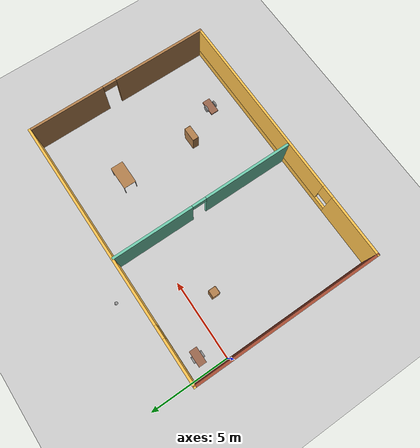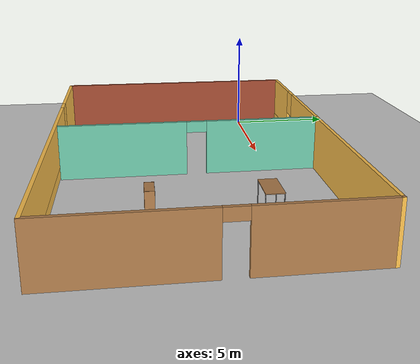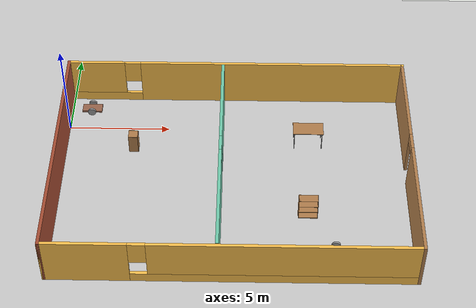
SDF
<sdf version="1.6">
 <world name="default">
  <plugin name="welcome" filename="libwelcome.so"/>
  <light name="sun" type="directional">
   <pose>0 0 10 0 -0 0</pose>
   <diffuse>0.8 0.8 0.8 1</diffuse>
   <specular>0.2 0.2 0.2 1</specular>
   <attenuation>
    <range>1000</range>
    <constant>0.9</constant>
    <linear>0.01</linear>
    <quadratic>0.001</quadratic>
   </attenuation>
   <direction>-0.5 0.1 -0.9</direction>
  </light>
  <model name="ground_plane">
   <static>1</static>
   <link name="link">
    <collision name="collision">
     <geometry><plane><normal>0 0 1</normal><size>100 100</size></plane></geometry>
     <surface>
      <contact><collide_bitmask>65535</collide_bitmask></contact>
      <friction><ode><mu>100</mu><mu2>50</mu2></ode></friction>
     </surface>
    </collision>
    <visual name="visual">
     <cast_shadows>0</cast_shadows>
     <geometry><plane><normal>0 0 1</normal><size>100 100</size></plane></geometry>
     <material>
      <script><uri>file://media/materials/scripts/gazebo.material</uri><name>Gazebo/Grey</name></script>
     </material>
    </visual>
   </link>
  </model>
  <gravity>0 0 -9.8</gravity>
  <magnetic_field>6e-06 2.3e-05 -4.2e-05</magnetic_field>
  <atmosphere type="adiabatic"/>
  <physics name="default_physics" default="0" type="ode">
   <max_step_size>0.001</max_step_size>
   <real_time_factor>1</real_time_factor>
   <real_time_update_rate>1000</real_time_update_rate>
  </physics>
  <scene><ambient>0.4 0.4 0.4 1</ambient><background>0.7 0.7 0.7 1</background><shadows>1</shadows></scene>
  <spherical_coordinates>
   <surface_model>EARTH_WGS84</surface_model>
   <latitude_deg>0</latitude_deg>
   <longitude_deg>0</longitude_deg>
   <elevation>0</elevation>
   <heading_deg>0</heading_deg>
  </spherical_coordinates>
  <model name="newbuilding">
   <pose>8.32903 -3.66794 0 0 -0 0</pose>
   <link name="Wall_36">
    <collision name="Wall_36_Collision">
     <geometry><box><size>12 0.15 2.5</size></box></geometry>
     <pose>0 0 1.25 0 -0 0</pose>
    </collision>
    <visual name="Wall_36_Visual">
     <pose>0 0 1.25 0 -0 0</pose>
     <geometry><box><size>12 0.15 2.5</size></box></geometry>
     <material>
      <script><uri>file://media/materials/scripts/gazebo.material</uri><name>Gazebo/Bricks</name></script>
      <ambient>1 1 1 1</ambient>
     </material>
     <meta><layer>0</layer></meta>
    </visual>
    <pose>-8.425 0 0 0 0 -1.5708</pose>
   </link>
   <link name="Wall_37">
    <pose>0 -5.925 0 0 -0 0</pose>
    <visual name="Wall_37_Visual_0">
     <pose>-6.51786 0 1.25 0 -0 0</pose>
     <geometry><box><size>3.96427 0.15 2.5</size></box></geometry>
     <material>
      <script><uri>file://media/materials/scripts/gazebo.material</uri><name>Gazebo/Grey</name></script>
      <ambient>1 0.764706 0.305882 1</ambient>
     </material>
     <meta><layer>0</layer></meta>
    </visual>
    <collision name="Wall_37_Collision_0">
     <geometry><box><size>3.96427 0.15 2.5</size></box></geometry>
     <pose>-6.51786 0 1.25 0 -0 0</pose>
    </collision>
    <visual name="Wall_37_Visual_1">
     <pose>1.98213 0 0.25 0 -0 0</pose>
     <geometry><box><size>13.0357 0.15 0.5</size></box></geometry>
     <material>
      <script><uri>file://media/materials/scripts/gazebo.material</uri><name>Gazebo/Grey</name></script>
      <ambient>1 0.764706 0.305882 1</ambient>
     </material>
     <meta><layer>0</layer></meta>
    </visual>
    <collision name="Wall_37_Collision_1">
     <geometry><box><size>13.0357 0.15 0.5</size></box></geometry>
     <pose>1.98213 0 0.25 0 -0 0</pose>
    </collision>
    <visual name="Wall_37_Visual_2">
     <pose>2.38213 0 1.5 0 -0 0</pose>
     <geometry><box><size>12.2357 0.15 2</size></box></geometry>
     <material>
      <script><uri>file://media/materials/scripts/gazebo.material</uri><name>Gazebo/Grey</name></script>
      <ambient>1 0.764706 0.305882 1</ambient>
     </material>
     <meta><layer>0</layer></meta>
    </visual>
    <collision name="Wall_37_Collision_2">
     <geometry><box><size>12.2357 0.15 2</size></box></geometry>
     <pose>2.38213 0 1.5 0 -0 0</pose>
    </collision>
    <visual name="Wall_37_Visual_3">
     <pose>-4.13573 0 1.9 0 -0 0</pose>
     <geometry><box><size>0.8 0.15 1.2</size></box></geometry>
     <material>
      <script><uri>file://media/materials/scripts/gazebo.material</uri><name>Gazebo/Grey</name></script>
      <ambient>1 0.764706 0.305882 1</ambient>
     </material>
     <meta><layer>0</layer></meta>
    </visual>
    <collision name="Wall_37_Collision_3">
     <geometry><box><size>0.8 0.15 1.2</size></box></geometry>
     <pose>-4.13573 0 1.9 0 -0 0</pose>
    </collision>
   </link>
   <link name="Wall_38">
    <pose>8.425 0 0 0 -0 1.5708</pose>
    <visual name="Wall_38_Visual_0">
     <pose>-2.94223 0 1.25 0 -0 0</pose>
     <geometry><box><size>6.11555 0.15 2.5</size></box></geometry>
     <material>
      <script><uri>file://media/materials/scripts/gazebo.material</uri><name>Gazebo/Wood</name></script>
      <ambient>1 1 1 1</ambient>
     </material>
     <meta><layer>0</layer></meta>
    </visual>
    <collision name="Wall_38_Collision_0">
     <geometry><box><size>6.11555 0.15 2.5</size></box></geometry>
     <pose>-2.94223 0 1.25 0 -0 0</pose>
    </collision>
    <visual name="Wall_38_Visual_1">
     <pose>3.50778 0 1.25 0 -0 0</pose>
     <geometry><box><size>4.98445 0.15 2.5</size></box></geometry>
     <material>
      <script><uri>file://media/materials/scripts/gazebo.material</uri><name>Gazebo/Wood</name></script>
      <ambient>1 1 1 1</ambient>
     </material>
     <meta><layer>0</layer></meta>
    </visual>
    <collision name="Wall_38_Collision_1">
     <geometry><box><size>4.98445 0.15 2.5</size></box></geometry>
     <pose>3.50778 0 1.25 0 -0 0</pose>
    </collision>
    <visual name="Wall_38_Visual_2">
     <pose>0.56555 0 2.25 0 -0 0</pose>
     <geometry><box><size>0.9 0.15 0.5</size></box></geometry>
     <material>
      <script><uri>file://media/materials/scripts/gazebo.material</uri><name>Gazebo/Wood</name></script>
      <ambient>1 1 1 1</ambient>
     </material>
     <meta><layer>0</layer></meta>
    </visual>
    <collision name="Wall_38_Collision_2">
     <geometry><box><size>0.9 0.15 0.5</size></box></geometry>
     <pose>0.56555 0 2.25 0 -0 0</pose>
    </collision>
   </link>
   <link name="Wall_39">
    <pose>0 5.925 0 0 -0 3.14159</pose>
    <visual name="Wall_39_Visual_0">
     <pose>-1.84681 0 1.25 0 -0 0</pose>
     <geometry><box><size>13.3064 0.15 2.5</size></box></geometry>
     <material>
      <script><uri>file://media/materials/scripts/gazebo.material</uri><name>Gazebo/Grey</name></script>
      <ambient>1 0.764706 0.305882 1</ambient>
     </material>
     <meta><layer>0</layer></meta>
    </visual>
    <collision name="Wall_39_Collision_0">
     <geometry><box><size>13.3064 0.15 2.5</size></box></geometry>
     <pose>-1.84681 0 1.25 0 -0 0</pose>
    </collision>
    <visual name="Wall_39_Visual_1">
     <pose>6.65319 0 0.25 0 -0 0</pose>
     <geometry><box><size>3.69361 0.15 0.5</size></box></geometry>
     <material>
      <script><uri>file://media/materials/scripts/gazebo.material</uri><name>Gazebo/Grey</name></script>
      <ambient>1 0.764706 0.305882 1</ambient>
     </material>
     <meta><layer>0</layer></meta>
    </visual>
    <collision name="Wall_39_Collision_1">
     <geometry><box><size>3.69361 0.15 0.5</size></box></geometry>
     <pose>6.65319 0 0.25 0 -0 0</pose>
    </collision>
    <visual name="Wall_39_Visual_2">
     <pose>7.05319 0 1.5 0 -0 0</pose>
     <geometry><box><size>2.89361 0.15 2</size></box></geometry>
     <material>
      <script><uri>file://media/materials/scripts/gazebo.material</uri><name>Gazebo/Grey</name></script>
      <ambient>1 0.764706 0.305882 1</ambient>
     </material>
     <meta><layer>0</layer></meta>
    </visual>
    <collision name="Wall_39_Collision_2">
     <geometry><box><size>2.89361 0.15 2</size></box></geometry>
     <pose>7.05319 0 1.5 0 -0 0</pose>
    </collision>
    <visual name="Wall_39_Visual_3">
     <pose>5.20639 0 1.9 0 -0 0</pose>
     <geometry><box><size>0.8 0.15 1.2</size></box></geometry>
     <material>
      <script><uri>file://media/materials/scripts/gazebo.material</uri><name>Gazebo/Grey</name></script>
      <ambient>1 0.764706 0.305882 1</ambient>
     </material>
     <meta><layer>0</layer></meta>
    </visual>
    <collision name="Wall_39_Collision_3">
     <geometry><box><size>0.8 0.15 1.2</size></box></geometry>
     <pose>5.20639 0 1.9 0 -0 0</pose>
    </collision>
   </link>
   <link name="Wall_41">
    <pose>-0.617853 0.05766 0 0 0 -1.5708</pose>
    <visual name="Wall_41_Visual_0">
     <pose>-3.29408 0 1.25 0 -0 0</pose>
     <geometry><box><size>5.16183 0.15 2.5</size></box></geometry>
     <material>
      <script><uri>file://media/materials/scripts/gazebo.material</uri><name>Gazebo/Grey</name></script>
      <ambient>0.435294 0.796078 0.67451 1</ambient>
     </material>
     <meta><layer>0</layer></meta>
    </visual>
    <collision name="Wall_41_Collision_0">
     <geometry><box><size>5.16183 0.15 2.5</size></box></geometry>
     <pose>-3.29408 0 1.25 0 -0 0</pose>
    </collision>
    <visual name="Wall_41_Visual_1">
     <pose>3.03092 0 1.25 0 -0 0</pose>
     <geometry><box><size>5.68817 0.15 2.5</size></box></geometry>
     <material>
      <script><uri>file://media/materials/scripts/gazebo.material</uri><name>Gazebo/Grey</name></script>
      <ambient>0.435294 0.796078 0.67451 1</ambient>
     </material>
     <meta><layer>0</layer></meta>
    </visual>
    <collision name="Wall_41_Collision_1">
     <geometry><box><size>5.68817 0.15 2.5</size></box></geometry>
     <pose>3.03092 0 1.25 0 -0 0</pose>
    </collision>
    <visual name="Wall_41_Visual_2">
     <pose>-0.263169 0 2.25 0 -0 0</pose>
     <geometry><box><size>0.9 0.15 0.5</size></box></geometry>
     <material>
      <script><uri>file://media/materials/scripts/gazebo.material</uri><name>Gazebo/Grey</name></script>
      <ambient>0.435294 0.796078 0.67451 1</ambient>
     </material>
     <meta><layer>0</layer></meta>
    </visual>
    <collision name="Wall_41_Collision_2">
     <geometry><box><size>0.9 0.15 0.5</size></box></geometry>
     <pose>-0.263169 0 2.25 0 -0 0</pose>
    </collision>
   </link>
   <static>1</static>
  </model>
  <model name="bookshelf">
   <static>1</static>
   <link name="link">
    <inertial><mass>1</mass></inertial>
    <collision name="back">
     <pose>0 0.005 0.6 0 -0 0</pose>
     <geometry><box><size>0.9 0.01 1.2</size></box></geometry>
    </collision>
    <visual name="visual1">
     <pose>0 0.005 0.6 0 -0 0</pose>
     <geometry><box><size>0.9 0.01 1.2</size></box></geometry>
     <material>
      <script><uri>file://media/materials/scripts/gazebo.material</uri><name>Gazebo/Wood</name></script>
     </material>
    </visual>
    <collision name="left_side">
     <pose>0.45 -0.195 0.6 0 -0 0</pose>
     <geometry><box><size>0.02 0.4 1.2</size></box></geometry>
    </collision>
    <visual name="visual2">
     <pose>0.45 -0.195 0.6 0 -0 0</pose>
     <geometry><box><size>0.02 0.4 1.2</size></box></geometry>
     <material>
      <script><uri>file://media/materials/scripts/gazebo.material</uri><name>Gazebo/Wood</name></script>
     </material>
    </visual>
    <collision name="right_side">
     <pose>-0.45 -0.195 0.6 0 -0 0</pose>
     <geometry><box><size>0.02 0.4 1.2</size></box></geometry>
    </collision>
    <visual name="visual3">
     <pose>-0.45 -0.195 0.6 0 -0 0</pose>
     <geometry><box><size>0.02 0.4 1.2</size></box></geometry>
     <material>
      <script><uri>file://media/materials/scripts/gazebo.material</uri><name>Gazebo/Wood</name></script>
     </material>
    </visual>
    <collision name="bottom">
     <pose>0 -0.195 0.03 0 -0 0</pose>
     <geometry><box><size>0.88 0.4 0.06</size></box></geometry>
    </collision>
    <visual name="visual4">
     <pose>0 -0.195 0.03 0 -0 0</pose>
     <geometry><box><size>0.88 0.4 0.06</size></box></geometry>
     <material>
      <script><uri>file://media/materials/scripts/gazebo.material</uri><name>Gazebo/Wood</name></script>
     </material>
    </visual>
    <collision name="top">
     <pose>0 -0.195 1.19 0 -0 0</pose>
     <geometry><box><size>0.88 0.4 0.02</size></box></geometry>
    </collision>
    <visual name="visual5">
     <pose>0 -0.195 1.19 0 -0 0</pose>
     <geometry><box><size>0.88 0.4 0.02</size></box></geometry>
     <material>
      <script><uri>file://media/materials/scripts/gazebo.material</uri><name>Gazebo/Wood</name></script>
     </material>
    </visual>
    <collision name="low_shelf">
     <pose>0 -0.195 0.43 0 -0 0</pose>
     <geometry><box><size>0.88 0.4 0.02</size></box></geometry>
    </collision>
    <visual name="visual6">
     <pose>0 -0.195 0.43 0 -0 0</pose>
     <geometry><box><size>0.88 0.4 0.02</size></box></geometry>
     <material>
      <script><uri>file://media/materials/scripts/gazebo.material</uri><name>Gazebo/Wood</name></script>
     </material>
    </visual>
    <collision name="high_shelf">
     <pose>0 -0.195 0.8 0 -0 0</pose>
     <geometry><box><size>0.88 0.4 0.02</size></box></geometry>
    </collision>
    <visual name="visual7">
     <pose>0 -0.195 0.8 0 -0 0</pose>
     <geometry><box><size>0.88 0.4 0.02</size></box></geometry>
     <material>
      <script><uri>file://media/materials/scripts/gazebo.material</uri><name>Gazebo/Wood</name></script>
     </material>
    </visual>
   </link>
   <pose>11.8759 -5.45083 0 0 -0 0</pose>
  </model>
  <model name="cabinet">
   <static>1</static>
   <link name="cabinet_bottom_plate">
    <inertial>
     <pose>0 0 -1 0 -0 0</pose>
     <inertia><ixx>2.05</ixx><ixy>0</ixy><ixz>0</ixz><iyy>2.05</iyy><iyz>0</iyz><izz>2.05</izz></inertia>
     <mass>25</mass>
    </inertial>
    <collision name="cabinet_bottom_plate_geom">
     <pose>0 0 0.01 0 -0 0</pose>
     <geometry><box><size>0.45 0.45 0.02</size></box></geometry>
    </collision>
    <visual name="cabinet_bottom_plate_geom_visual">
     <pose>0 0 0.01 0 -0 0</pose>
     <geometry><box><size>0.45 0.45 0.02</size></box></geometry>
     <material>
      <script><uri>file://media/materials/scripts/gazebo.material</uri><name>Gazebo/Wood</name></script>
     </material>
    </visual>
    <collision name="cabinet_bottom_plate_geom_cabinet_back_plate">
     <pose>0.235 0 0.51 0 -0 0</pose>
     <geometry><box><size>0.02 0.45 1.02</size></box></geometry>
    </collision>
    <visual name="cabinet_bottom_plate_geom_cabinet_back_plate_visual">
     <pose>0.235 0 0.51 0 -0 0</pose>
     <geometry><box><size>0.02 0.45 1.02</size></box></geometry>
     <material>
      <script><uri>file://media/materials/scripts/gazebo.material</uri><name>Gazebo/Wood</name></script>
     </material>
    </visual>
    <collision name="cabinet_bottom_plate_geom_cabinet_left_plate">
     <pose>0 0.235 0.51 0 -0 0</pose>
     <geometry><box><size>0.45 0.02 1.02</size></box></geometry>
    </collision>
    <visual name="cabinet_bottom_plate_geom_cabinet_left_plate_visual">
     <pose>0 0.235 0.51 0 -0 0</pose>
     <geometry><box><size>0.45 0.02 1.02</size></box></geometry>
     <material>
      <script><uri>file://media/materials/scripts/gazebo.material</uri><name>Gazebo/Wood</name></script>
     </material>
    </visual>
    <collision name="cabinet_bottom_plate_geom_cabinet_middle_plate">
     <pose>0 0 0.51 0 -0 0</pose>
     <geometry><box><size>0.45 0.45 0.02</size></box></geometry>
    </collision>
    <visual name="cabinet_bottom_plate_geom_cabinet_middle_plate_visual">
     <pose>0 0 0.51 0 -0 0</pose>
     <geometry><box><size>0.45 0.45 0.02</size></box></geometry>
     <material>
      <script><uri>file://media/materials/scripts/gazebo.material</uri><name>Gazebo/Wood</name></script>
     </material>
    </visual>
    <collision name="cabinet_bottom_plate_geom_cabinet_right_plate">
     <pose>0 -0.235 0.51 0 -0 0</pose>
     <geometry><box><size>0.45 0.02 1.02</size></box></geometry>
    </collision>
    <visual name="cabinet_bottom_plate_geom_cabinet_right_plate_visual">
     <pose>0 -0.235 0.51 0 -0 0</pose>
     <geometry><box><size>0.45 0.02 1.02</size></box></geometry>
     <material>
      <script><uri>file://media/materials/scripts/gazebo.material</uri><name>Gazebo/Wood</name></script>
     </material>
    </visual>
    <collision name="cabinet_bottom_plate_geom_cabinet_top_plate">
     <pose>0 0 1.01 0 -0 0</pose>
     <geometry><box><size>0.45 0.45 0.02</size></box></geometry>
    </collision>
    <visual name="cabinet_bottom_plate_geom_cabinet_top_plate_visual">
     <pose>0 0 1.01 0 -0 0</pose>
     <geometry><box><size>0.45 0.45 0.02</size></box></geometry>
     <material>
      <script><uri>file://media/materials/scripts/gazebo.material</uri><name>Gazebo/Wood</name></script>
     </material>
    </visual>
   </link>
   <pose>3.3339 -1.37561 0 0 -0 0</pose>
  </model>
  <model name="table">
   <static>1</static>
   <link name="link">
    <collision name="surface">
     <pose>0 0 1 0 -0 0</pose>
     <geometry><box><size>1.5 0.8 0.03</size></box></geometry>
     <surface><friction><ode><mu>0.6</mu><mu2>0.6</mu2></ode></friction></surface>
    </collision>
    <visual name="visual1">
     <pose>0 0 1 0 -0 0</pose>
     <geometry><box><size>1.5 0.8 0.03</size></box></geometry>
     <material>
      <script><uri>file://media/materials/scripts/gazebo.material</uri><name>Gazebo/Wood</name></script>
     </material>
    </visual>
    <collision name="front_left_leg">
     <pose>0.68 0.38 0.5 0 -0 0</pose>
     <geometry><cylinder><radius>0.02</radius><length>1</length></cylinder></geometry>
    </collision>
    <visual name="front_left_leg">
     <pose>0.68 0.38 0.5 0 -0 0</pose>
     <geometry><cylinder><radius>0.02</radius><length>1</length></cylinder></geometry>
     <material>
      <script><uri>file://media/materials/scripts/gazebo.material</uri><name>Gazebo/Grey</name></script>
     </material>
    </visual>
    <collision name="front_right_leg">
     <pose>0.68 -0.38 0.5 0 -0 0</pose>
     <geometry><cylinder><radius>0.02</radius><length>1</length></cylinder></geometry>
    </collision>
    <visual name="front_right_leg">
     <pose>0.68 -0.38 0.5 0 -0 0</pose>
     <geometry><cylinder><radius>0.02</radius><length>1</length></cylinder></geometry>
     <material>
      <script><uri>file://media/materials/scripts/gazebo.material</uri><name>Gazebo/Grey</name></script>
     </material>
    </visual>
    <collision name="back_right_leg">
     <pose>-0.68 -0.38 0.5 0 -0 0</pose>
     <geometry><cylinder><radius>0.02</radius><length>1</length></cylinder></geometry>
    </collision>
    <visual name="back_right_leg">
     <pose>-0.68 -0.38 0.5 0 -0 0</pose>
     <geometry><cylinder><radius>0.02</radius><length>1</length></cylinder></geometry>
     <material>
      <script><uri>file://media/materials/scripts/gazebo.material</uri><name>Gazebo/Grey</name></script>
     </material>
    </visual>
    <collision name="back_left_leg">
     <pose>-0.68 0.38 0.5 0 -0 0</pose>
     <geometry><cylinder><radius>0.02</radius><length>1</length></cylinder></geometry>
    </collision>
    <visual name="back_left_leg">
     <pose>-0.68 0.38 0.5 0 -0 0</pose>
     <geometry><cylinder><radius>0.02</radius><length>1</length></cylinder></geometry>
     <material>
      <script><uri>file://media/materials/scripts/gazebo.material</uri><name>Gazebo/Grey</name></script>
     </material>
    </visual>
   </link>
   <pose>11.9923 -0.856035 0 0 -0 0</pose>
  </model>
  <model name="nbot">
   <link name="link_0">
    <pose>0 0 -0.029999 0 -0 0</pose>
    <inertial>
     <mass>1</mass>
     <inertia>
      <ixx>0.166667</ixx>
      <ixy>0</ixy>
      <ixz>0</ixz>
      <iyy>0.166667</iyy>
      <iyz>0</iyz>
      <izz>0.166667</izz>
     </inertia>
    </inertial>
    <visual name="visual">
     <geometry><box><size>1 0.5 0.1</size></box></geometry>
     <material>
      <lighting>1</lighting>
      <script><uri>file://media/materials/scripts/gazebo.material</uri><name>Gazebo/Grey</name></script>
      <shader type="pixel"><normal_map>__default__</normal_map></shader>
      <ambient>0.5 0.3 0.4 1</ambient>
      <diffuse>0.6 0.4 0.3 1</diffuse>
      <specular>0.05 0.01 0.01 1</specular>
      <emissive>0 0 0 1</emissive>
     </material>
    </visual>
    <collision name="collision">
     <geometry><box><size>1 0.5 0.1</size></box></geometry>
     <surface>
      <friction>
       <ode><mu>1</mu><mu2>1</mu2><fdir1>0 0 0</fdir1><slip1>0</slip1><slip2>0</slip2></ode>
       <torsional>
        <coefficient>1</coefficient>
        <patch_radius>0</patch_radius>
        <surface_radius>0</surface_radius>
        <use_patch_radius>1</use_patch_radius>
        <ode><slip>0</slip></ode>
       </torsional>
      </friction>
      <bounce><restitution_coefficient>0</restitution_coefficient><threshold>1e+06</threshold></bounce>
      <contact>
       <collide_without_contact>0</collide_without_contact>
       <collide_without_contact_bitmask>1</collide_without_contact_bitmask>
       <collide_bitmask>1</collide_bitmask>
       <ode>
        <soft_cfm>0</soft_cfm>
        <soft_erp>0.2</soft_erp>
        <kp>1e+13</kp>
        <kd>1</kd>
        <max_vel>0.01</max_vel>
        <min_depth>0</min_depth>
       </ode>
       <bullet>
        <split_impulse>1</split_impulse>
        <split_impulse_penetration_threshold>-0.01</split_impulse_penetration_threshold>
        <soft_cfm>0</soft_cfm>
        <soft_erp>0.2</soft_erp>
        <kp>1e+13</kp>
        <kd>1</kd>
       </bullet>
      </contact>
     </surface>
    </collision>
   </link>
   <link name="link_1_clone">
    <pose>0 0.300019 0.015001 1.5707 -0 0</pose>
    <inertial>
     <mass>1</mass>
     <inertia><ixx>0.145833</ixx><ixy>0</ixy><ixz>0</ixz><iyy>0.145833</iyy><iyz>0</iyz><izz>0.125</izz></inertia>
    </inertial>
    <visual name="visual">
     <geometry><cylinder><radius>0.2</radius><length>0.1</length></cylinder></geometry>
     <material>
      <lighting>1</lighting>
      <script><uri>file://media/materials/scripts/gazebo.material</uri><name>Gazebo/Grey</name></script>
      <shader type="pixel"><normal_map>__default__</normal_map></shader>
      <ambient>0.3 0.3 0.3 1</ambient>
      <diffuse>0.7 0.7 0.7 1</diffuse>
      <specular>0.01 0.01 0.01 1</specular>
      <emissive>0 0 0 1</emissive>
     </material>
    </visual>
    <collision name="collision">
     <geometry><cylinder><radius>0.2</radius><length>0.1</length></cylinder></geometry>
     <surface>
      <friction>
       <ode><mu>1</mu><mu2>1</mu2><fdir1>0 0 0</fdir1><slip1>0</slip1><slip2>0</slip2></ode>
       <torsional>
        <coefficient>1</coefficient>
        <patch_radius>0</patch_radius>
        <surface_radius>0</surface_radius>
        <use_patch_radius>1</use_patch_radius>
        <ode><slip>0</slip></ode>
       </torsional>
      </friction>
      <bounce><restitution_coefficient>0</restitution_coefficient><threshold>1e+06</threshold></bounce>
      <contact>
       <collide_without_contact>0</collide_without_contact>
       <collide_without_contact_bitmask>1</collide_without_contact_bitmask>
       <collide_bitmask>1</collide_bitmask>
       <ode>
        <soft_cfm>0</soft_cfm>
        <soft_erp>0.2</soft_erp>
        <kp>1e+13</kp>
        <kd>1</kd>
        <max_vel>0.01</max_vel>
        <min_depth>0</min_depth>
       </ode>
       <bullet>
        <split_impulse>1</split_impulse>
        <split_impulse_penetration_threshold>-0.01</split_impulse_penetration_threshold>
        <soft_cfm>0</soft_cfm>
        <soft_erp>0.2</soft_erp>
        <kp>1e+13</kp>
        <kd>1</kd>
       </bullet>
      </contact>
     </surface>
    </collision>
   </link>
   <link name="link_1_clone_0">
    <pose>0 -0.300019 0.014997 1.5707 -0 0</pose>
    <inertial>
     <mass>1</mass>
     <inertia><ixx>0.145833</ixx><ixy>0</ixy><ixz>0</ixz><iyy>0.145833</iyy><iyz>0</iyz><izz>0.125</izz></inertia>
    </inertial>
    <visual name="visual">
     <geometry><cylinder><radius>0.2</radius><length>0.1</length></cylinder></geometry>
     <material>
      <lighting>1</lighting>
      <script><uri>file://media/materials/scripts/gazebo.material</uri><name>Gazebo/Grey</name></script>
      <shader type="pixel"><normal_map>__default__</normal_map></shader>
      <ambient>0.3 0.3 0.3 1</ambient>
      <diffuse>0.7 0.7 0.7 1</diffuse>
      <specular>0.01 0.01 0.01 1</specular>
      <emissive>0 0 0 1</emissive>
     </material>
    </visual>
    <collision name="collision">
     <geometry><cylinder><radius>0.2</radius><length>0.1</length></cylinder></geometry>
     <surface>
      <friction>
       <ode><mu>1</mu><mu2>1</mu2><fdir1>0 0 0</fdir1><slip1>0</slip1><slip2>0</slip2></ode>
       <torsional>
        <coefficient>1</coefficient>
        <patch_radius>0</patch_radius>
        <surface_radius>0</surface_radius>
        <use_patch_radius>1</use_patch_radius>
        <ode><slip>0</slip></ode>
       </torsional>
      </friction>
      <bounce><restitution_coefficient>0</restitution_coefficient><threshold>1e+06</threshold></bounce>
      <contact>
       <collide_without_contact>0</collide_without_contact>
       <collide_without_contact_bitmask>1</collide_without_contact_bitmask>
       <collide_bitmask>1</collide_bitmask>
       <ode>
        <soft_cfm>0</soft_cfm>
        <soft_erp>0.2</soft_erp>
        <kp>1e+13</kp>
        <kd>1</kd>
        <max_vel>0.01</max_vel>
        <min_depth>0</min_depth>
       </ode>
       <bullet>
        <split_impulse>1</split_impulse>
        <split_impulse_penetration_threshold>-0.01</split_impulse_penetration_threshold>
        <soft_cfm>0</soft_cfm>
        <soft_erp>0.2</soft_erp>
        <kp>1e+13</kp>
        <kd>1</kd>
       </bullet>
      </contact>
     </surface>
    </collision>
   </link>
   <joint name="link_0_JOINT_2" type="revolute">
    <parent>link_0</parent>
    <child>link_1_clone_0</child>
    <axis>
     <xyz>0 0 1</xyz>
     <use_parent_model_frame>0</use_parent_model_frame>
     <limit>
      <lower>-1.79769e+308</lower>
      <upper>1.79769e+308</upper>
      <effort>-1</effort>
      <velocity>-1</velocity>
     </limit>
     <dynamics>
      <spring_reference>0</spring_reference>
      <spring_stiffness>0</spring_stiffness>
      <damping>0</damping>
     </dynamics>
    </axis>
    <physics>
     <ode><limit><cfm>0</cfm><erp>0.2</erp></limit><suspension><cfm>0</cfm><erp>0.2</erp></suspension></ode>
    </physics>
   </joint>
   <joint name="link_0_JOINT_3" type="revolute">
    <parent>link_0</parent>
    <child>link_1_clone</child>
    <axis>
     <xyz>0 0 1</xyz>
     <use_parent_model_frame>0</use_parent_model_frame>
     <limit>
      <lower>-1.79769e+308</lower>
      <upper>1.79769e+308</upper>
      <effort>-1</effort>
      <velocity>-1</velocity>
     </limit>
     <dynamics>
      <spring_reference>0</spring_reference>
      <spring_stiffness>0</spring_stiffness>
      <damping>0</damping>
     </dynamics>
    </axis>
    <physics>
     <ode><limit><cfm>0</cfm><erp>0.2</erp></limit><suspension><cfm>0</cfm><erp>0.2</erp></suspension></ode>
    </physics>
   </joint>
   <static>0</static>
   <pose>13.1221 -7.91276 0.185006 -7e-06 -1e-06 -8e-06</pose>
  </model>
  <model name="nbot_0">
   <link name="link_0">
    <pose>0 0 -0.029999 0 -0 0</pose>
    <inertial>
     <mass>1</mass>
     <inertia>
      <ixx>0.166667</ixx>
      <ixy>0</ixy>
      <ixz>0</ixz>
      <iyy>0.166667</iyy>
      <iyz>0</iyz>
      <izz>0.166667</izz>
     </inertia>
    </inertial>
    <visual name="visual">
     <geometry><box><size>1 0.5 0.1</size></box></geometry>
     <material>
      <lighting>1</lighting>
      <script><uri>file://media/materials/scripts/gazebo.material</uri><name>Gazebo/Grey</name></script>
      <shader type="pixel"><normal_map>__default__</normal_map></shader>
      <ambient>0.5 0.3 0.4 1</ambient>
      <diffuse>0.6 0.4 0.3 1</diffuse>
      <specular>0.05 0.01 0.01 1</specular>
      <emissive>0 0 0 1</emissive>
     </material>
    </visual>
    <collision name="collision">
     <geometry><box><size>1 0.5 0.1</size></box></geometry>
     <surface>
      <friction>
       <ode><mu>1</mu><mu2>1</mu2><fdir1>0 0 0</fdir1><slip1>0</slip1><slip2>0</slip2></ode>
       <torsional>
        <coefficient>1</coefficient>
        <patch_radius>0</patch_radius>
        <surface_radius>0</surface_radius>
        <use_patch_radius>1</use_patch_radius>
        <ode><slip>0</slip></ode>
       </torsional>
      </friction>
      <bounce><restitution_coefficient>0</restitution_coefficient><threshold>1e+06</threshold></bounce>
      <contact>
       <collide_without_contact>0</collide_without_contact>
       <collide_without_contact_bitmask>1</collide_without_contact_bitmask>
       <collide_bitmask>1</collide_bitmask>
       <ode>
        <soft_cfm>0</soft_cfm>
        <soft_erp>0.2</soft_erp>
        <kp>1e+13</kp>
        <kd>1</kd>
        <max_vel>0.01</max_vel>
        <min_depth>0</min_depth>
       </ode>
       <bullet>
        <split_impulse>1</split_impulse>
        <split_impulse_penetration_threshold>-0.01</split_impulse_penetration_threshold>
        <soft_cfm>0</soft_cfm>
        <soft_erp>0.2</soft_erp>
        <kp>1e+13</kp>
        <kd>1</kd>
       </bullet>
      </contact>
     </surface>
    </collision>
   </link>
   <link name="link_1_clone">
    <pose>0 0.300019 0.015001 1.5707 -0 0</pose>
    <inertial>
     <mass>1</mass>
     <inertia><ixx>0.145833</ixx><ixy>0</ixy><ixz>0</ixz><iyy>0.145833</iyy><iyz>0</iyz><izz>0.125</izz></inertia>
    </inertial>
    <visual name="visual">
     <geometry><cylinder><radius>0.2</radius><length>0.1</length></cylinder></geometry>
     <material>
      <lighting>1</lighting>
      <script><uri>file://media/materials/scripts/gazebo.material</uri><name>Gazebo/Grey</name></script>
      <shader type="pixel"><normal_map>__default__</normal_map></shader>
      <ambient>0.3 0.3 0.3 1</ambient>
      <diffuse>0.7 0.7 0.7 1</diffuse>
      <specular>0.01 0.01 0.01 1</specular>
      <emissive>0 0 0 1</emissive>
     </material>
    </visual>
    <collision name="collision">
     <geometry><cylinder><radius>0.2</radius><length>0.1</length></cylinder></geometry>
     <surface>
      <friction>
       <ode><mu>1</mu><mu2>1</mu2><fdir1>0 0 0</fdir1><slip1>0</slip1><slip2>0</slip2></ode>
       <torsional>
        <coefficient>1</coefficient>
        <patch_radius>0</patch_radius>
        <surface_radius>0</surface_radius>
        <use_patch_radius>1</use_patch_radius>
        <ode><slip>0</slip></ode>
       </torsional>
      </friction>
      <bounce><restitution_coefficient>0</restitution_coefficient><threshold>1e+06</threshold></bounce>
      <contact>
       <collide_without_contact>0</collide_without_contact>
       <collide_without_contact_bitmask>1</collide_without_contact_bitmask>
       <collide_bitmask>1</collide_bitmask>
       <ode>
        <soft_cfm>0</soft_cfm>
        <soft_erp>0.2</soft_erp>
        <kp>1e+13</kp>
        <kd>1</kd>
        <max_vel>0.01</max_vel>
        <min_depth>0</min_depth>
       </ode>
       <bullet>
        <split_impulse>1</split_impulse>
        <split_impulse_penetration_threshold>-0.01</split_impulse_penetration_threshold>
        <soft_cfm>0</soft_cfm>
        <soft_erp>0.2</soft_erp>
        <kp>1e+13</kp>
        <kd>1</kd>
       </bullet>
      </contact>
     </surface>
    </collision>
   </link>
   <link name="link_1_clone_0">
    <pose>0 -0.300019 0.014997 1.5707 -0 0</pose>
    <inertial>
     <mass>1</mass>
     <inertia><ixx>0.145833</ixx><ixy>0</ixy><ixz>0</ixz><iyy>0.145833</iyy><iyz>0</iyz><izz>0.125</izz></inertia>
    </inertial>
    <visual name="visual">
     <geometry><cylinder><radius>0.2</radius><length>0.1</length></cylinder></geometry>
     <material>
      <lighting>1</lighting>
      <script><uri>file://media/materials/scripts/gazebo.material</uri><name>Gazebo/Grey</name></script>
      <shader type="pixel"><normal_map>__default__</normal_map></shader>
      <ambient>0.3 0.3 0.3 1</ambient>
      <diffuse>0.7 0.7 0.7 1</diffuse>
      <specular>0.01 0.01 0.01 1</specular>
      <emissive>0 0 0 1</emissive>
     </material>
    </visual>
    <collision name="collision">
     <geometry><cylinder><radius>0.2</radius><length>0.1</length></cylinder></geometry>
     <surface>
      <friction>
       <ode><mu>1</mu><mu2>1</mu2><fdir1>0 0 0</fdir1><slip1>0</slip1><slip2>0</slip2></ode>
       <torsional>
        <coefficient>1</coefficient>
        <patch_radius>0</patch_radius>
        <surface_radius>0</surface_radius>
        <use_patch_radius>1</use_patch_radius>
        <ode><slip>0</slip></ode>
       </torsional>
      </friction>
      <bounce><restitution_coefficient>0</restitution_coefficient><threshold>1e+06</threshold></bounce>
      <contact>
       <collide_without_contact>0</collide_without_contact>
       <collide_without_contact_bitmask>1</collide_without_contact_bitmask>
       <collide_bitmask>1</collide_bitmask>
       <ode>
        <soft_cfm>0</soft_cfm>
        <soft_erp>0.2</soft_erp>
        <kp>1e+13</kp>
        <kd>1</kd>
        <max_vel>0.01</max_vel>
        <min_depth>0</min_depth>
       </ode>
       <bullet>
        <split_impulse>1</split_impulse>
        <split_impulse_penetration_threshold>-0.01</split_impulse_penetration_threshold>
        <soft_cfm>0</soft_cfm>
        <soft_erp>0.2</soft_erp>
        <kp>1e+13</kp>
        <kd>1</kd>
       </bullet>
      </contact>
     </surface>
    </collision>
   </link>
   <joint name="link_0_JOINT_2" type="revolute">
    <parent>link_0</parent>
    <child>link_1_clone_0</child>
    <axis>
     <xyz>0 0 1</xyz>
     <use_parent_model_frame>0</use_parent_model_frame>
     <limit>
      <lower>-1.79769e+308</lower>
      <upper>1.79769e+308</upper>
      <effort>-1</effort>
      <velocity>-1</velocity>
     </limit>
     <dynamics>
      <spring_reference>0</spring_reference>
      <spring_stiffness>0</spring_stiffness>
      <damping>0</damping>
     </dynamics>
    </axis>
    <physics>
     <ode><limit><cfm>0</cfm><erp>0.2</erp></limit><suspension><cfm>0</cfm><erp>0.2</erp></suspension></ode>
    </physics>
   </joint>
   <joint name="link_0_JOINT_3" type="revolute">
    <parent>link_0</parent>
    <child>link_1_clone</child>
    <axis>
     <xyz>0 0 1</xyz>
     <use_parent_model_frame>0</use_parent_model_frame>
     <limit>
      <lower>-1.79769e+308</lower>
      <upper>1.79769e+308</upper>
      <effort>-1</effort>
      <velocity>-1</velocity>
     </limit>
     <dynamics>
      <spring_reference>0</spring_reference>
      <spring_stiffness>0</spring_stiffness>
      <damping>0</damping>
     </dynamics>
    </axis>
    <physics>
     <ode><limit><cfm>0</cfm><erp>0.2</erp></limit><suspension><cfm>0</cfm><erp>0.2</erp></suspension></ode>
    </physics>
   </joint>
   <static>0</static>
   <pose>0.988657 1.31946 0.185006 -7e-06 -0 -1.6e-05</pose>
  </model>
  <model name="myball">
   <link name="link_1">
    <inertial>
     <mass>1</mass>
     <inertia><ixx>0.1</ixx><ixy>0</ixy><ixz>0</ixz><iyy>0.1</iyy><iyz>0</iyz><izz>0.1</izz></inertia>
    </inertial>
    <visual name="visual">
     <geometry><sphere><radius>0.1</radius></sphere></geometry>
     <material>
      <lighting>1</lighting>
      <script><uri>file://media/materials/scripts/gazebo.material</uri><name>Gazebo/Grey</name></script>
      <shader type="pixel"><normal_map>__default__</normal_map></shader>
      <ambient>1 1 1 1</ambient>
      <diffuse>1 1 1 1</diffuse>
      <specular>1 1 1 1</specular>
      <emissive>0 0 0 1</emissive>
     </material>
    </visual>
    <collision name="collision">
     <geometry><sphere><radius>0.1</radius></sphere></geometry>
     <surface>
      <friction>
       <ode><mu>1</mu><mu2>1</mu2><fdir1>0 0 0</fdir1><slip1>0</slip1><slip2>0</slip2></ode>
       <torsional>
        <coefficient>1</coefficient>
        <patch_radius>0</patch_radius>
        <surface_radius>0</surface_radius>
        <use_patch_radius>1</use_patch_radius>
        <ode><slip>0</slip></ode>
       </torsional>
      </friction>
      <bounce><restitution_coefficient>0</restitution_coefficient><threshold>1e+06</threshold></bounce>
      <contact>
       <collide_without_contact>0</collide_without_contact>
       <collide_without_contact_bitmask>1</collide_without_contact_bitmask>
       <collide_bitmask>1</collide_bitmask>
       <ode>
        <soft_cfm>0</soft_cfm>
        <soft_erp>0.2</soft_erp>
        <kp>1e+13</kp>
        <kd>1</kd>
        <max_vel>0.01</max_vel>
        <min_depth>0</min_depth>
       </ode>
       <bullet>
        <split_impulse>1</split_impulse>
        <split_impulse_penetration_threshold>-0.01</split_impulse_penetration_threshold>
        <soft_cfm>0</soft_cfm>
        <soft_erp>0.2</soft_erp>
        <kp>1e+13</kp>
        <kd>1</kd>
       </bullet>
      </contact>
     </surface>
    </collision>
   </link>
   <static>0</static>
   <pose>6 3.5 0.1 0 -0 0</pose>
  </model>
 </world>
</sdf>
